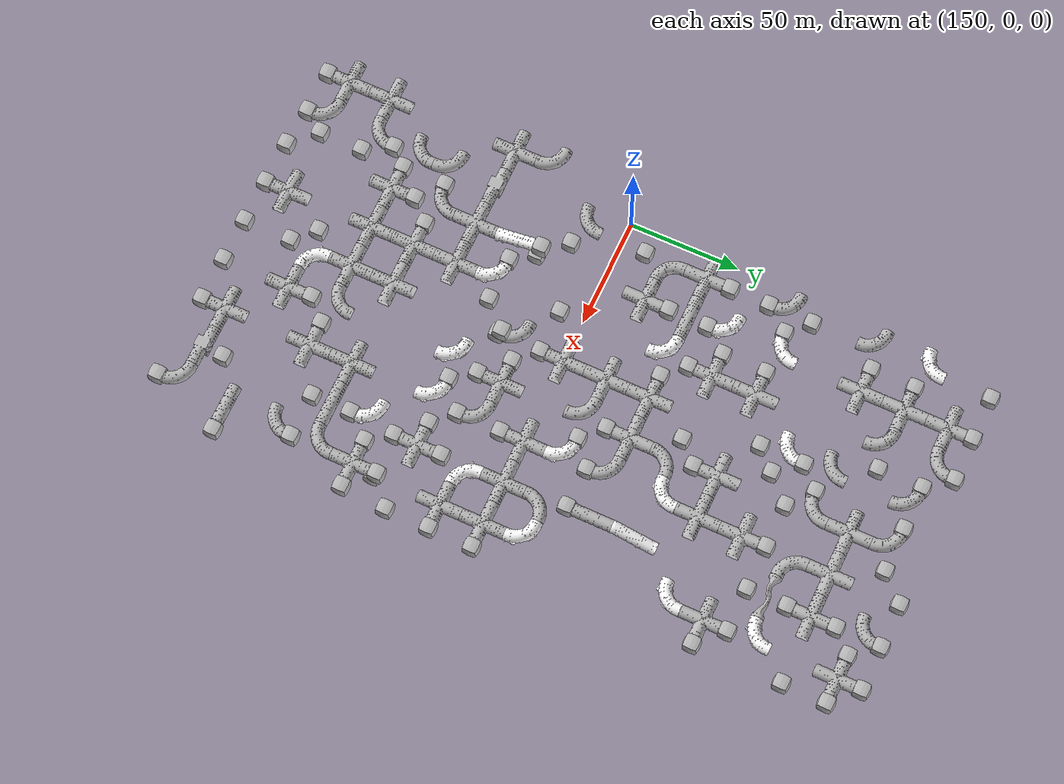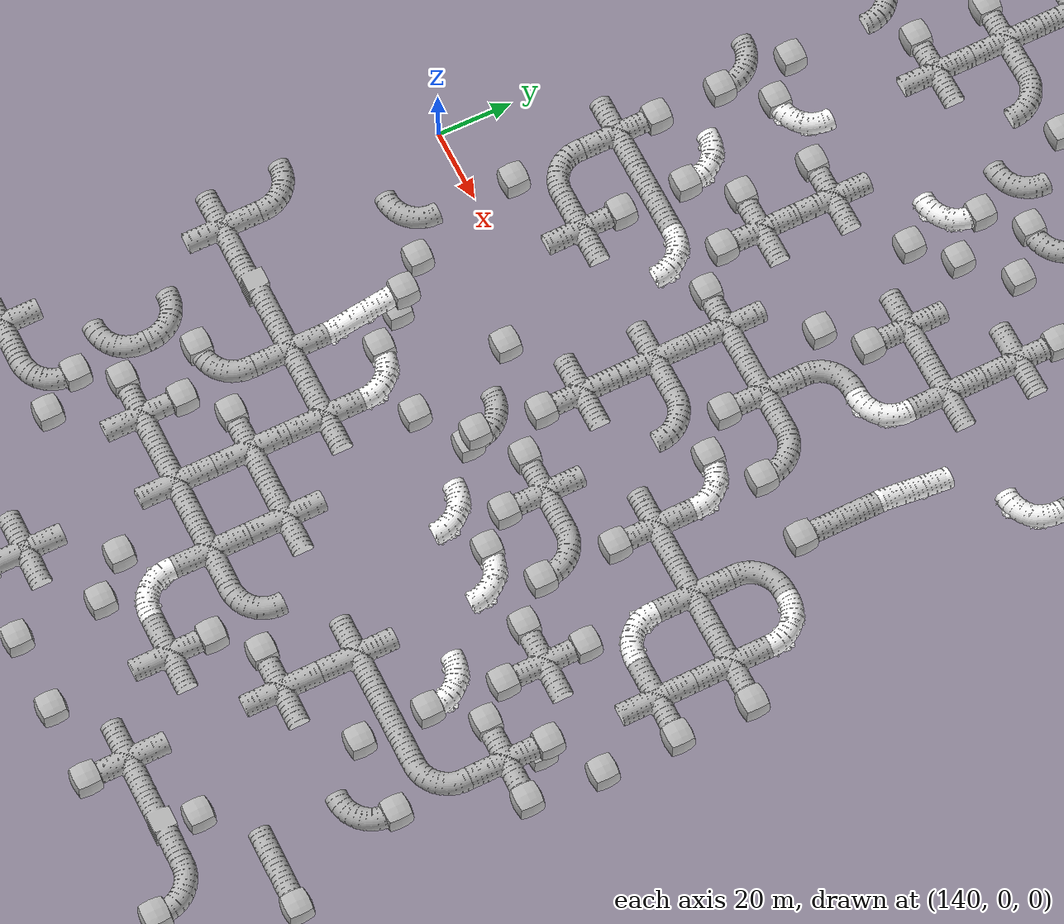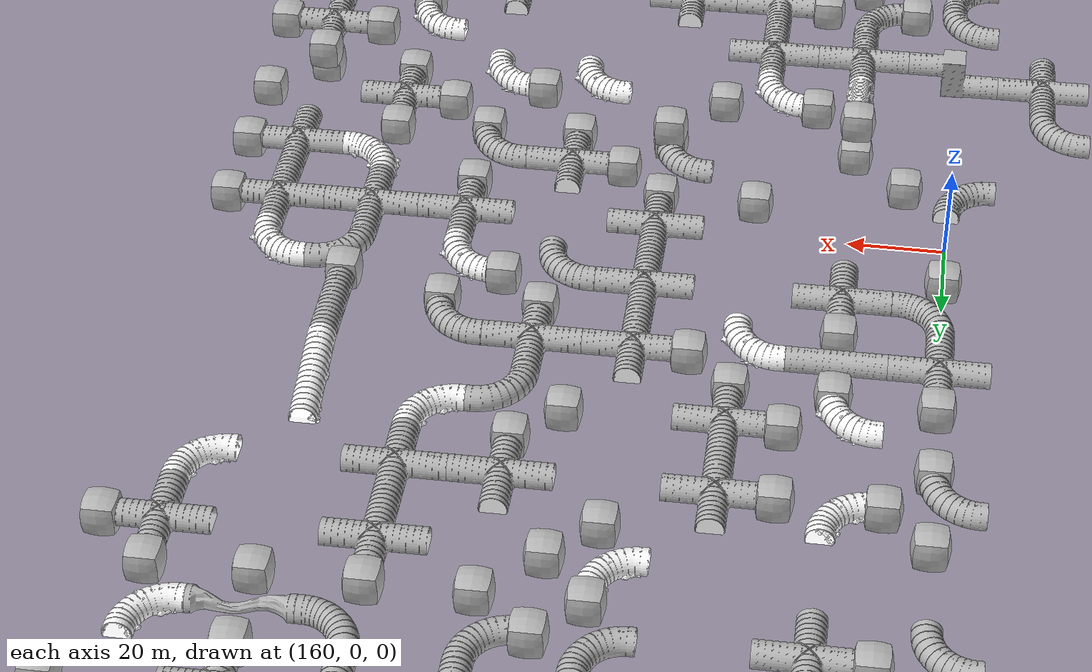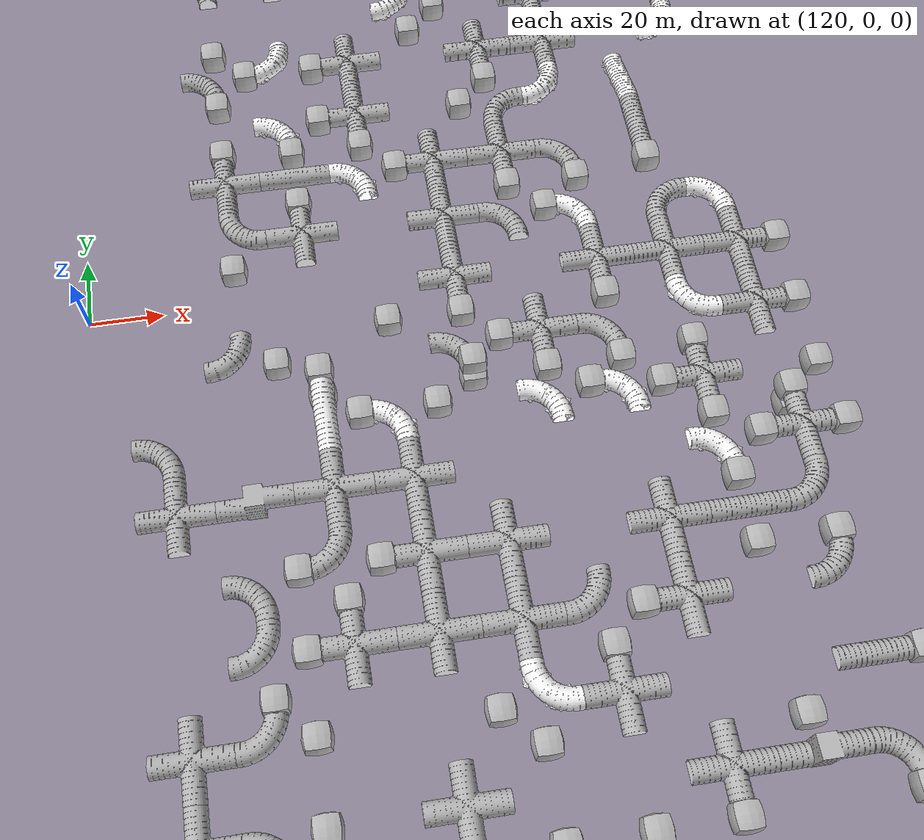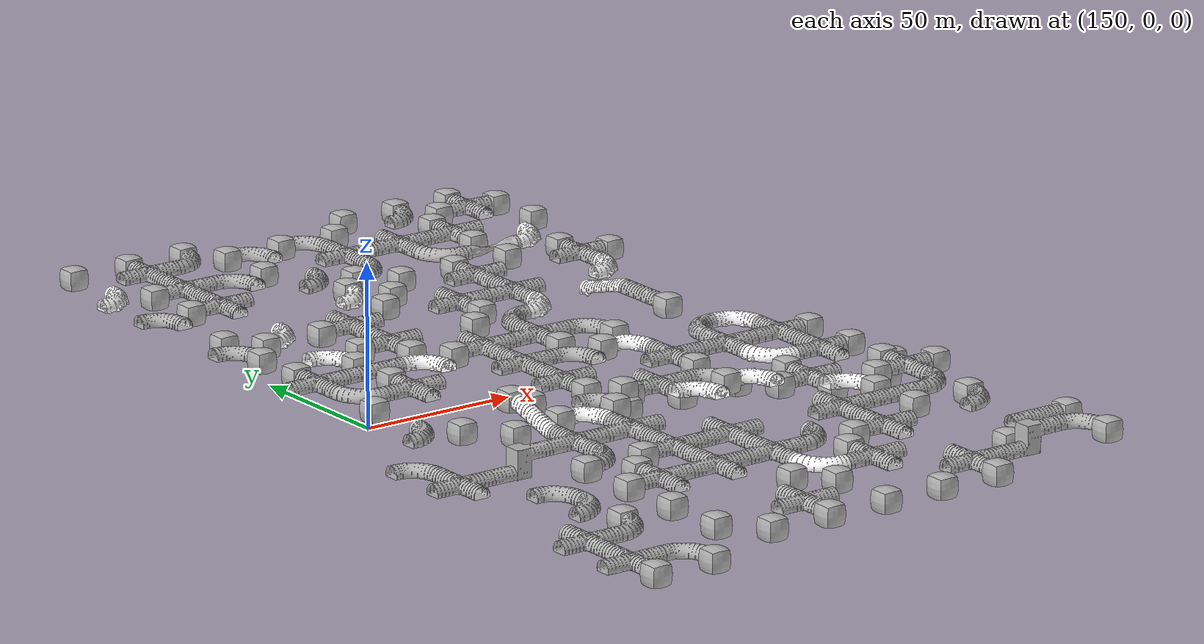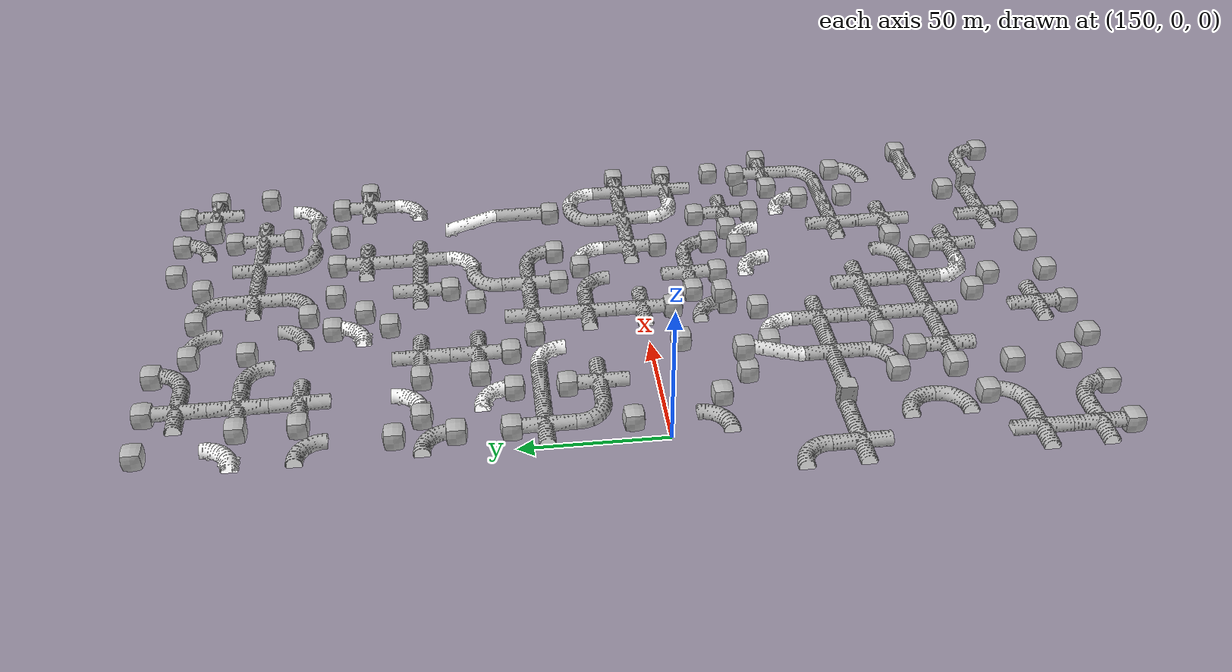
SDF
<sdf version="1.6">
 <world name="tunnel_circuit_practice_01">
  <include>
   <name>tile_22</name>
   <uri>model://tunnel_tile_blocker</uri>
   <pose>160.000000 171.000000 0.000000 0 0 0.000000</pose>
  </include>
  <include>
   <name>tile_23</name>
   <uri>model://tunnel_tile_1</uri>
   <pose>180.000000 160.000000 0.000000 0 0 0.000000</pose>
  </include>
  <include>
   <name>tile_24</name>
   <uri>model://tunnel_tile_blocker</uri>
   <pose>180.000000 171.000000 0.000000 0 0 0.000000</pose>
  </include>
  <include>
   <name>tile_25</name>
   <uri>model://tunnel_tile_2</uri>
   <pose>200.000000 160.000000 0.000000 0 0 3.141593</pose>
  </include>
  <include>
   <name>tile_26</name>
   <uri>model://tunnel_tile_blocker</uri>
   <pose>200.000000 171.000000 0.000000 0 0 0.000000</pose>
  </include>
  <include>
   <name>tile_27</name>
   <uri>model://tunnel_tile_2</uri>
   <pose>220.000000 160.000000 0.000000 0 0 4.712389</pose>
  </include>
  <include>
   <name>tile_28</name>
   <uri>model://tunnel_tile_blocker</uri>
   <pose>209.000000 160.000000 0.000000 0 0 0.000000</pose>
  </include>
  <include>
   <name>tile_29</name>
   <uri>model://tunnel_tile_2</uri>
   <pose>240.000000 160.000000 0.000000 0 0 4.712389</pose>
  </include>
  <include>
   <name>tile_30</name>
   <uri>model://tunnel_tile_blocker</uri>
   <pose>229.000000 160.000000 0.000000 0 0 0.000000</pose>
  </include>
  <include>
   <name>tile_32</name>
   <uri>model://tunnel_tile_blocker</uri>
   <pose>249.000000 160.000000 0.000000 0 0 0.000000</pose>
  </include>
  <include>
   <name>tile_33</name>
   <uri>model://tunnel_tile_blocker</uri>
   <pose>260.000000 171.000000 0.000000 0 0 0.000000</pose>
  </include>
  <include>
   <name>tile_34</name>
   <uri>model://tunnel_tile_2</uri>
   <pose>280.000000 160.000000 0.000000 0 0 3.141593</pose>
  </include>
  <include>
   <name>tile_35</name>
   <uri>model://tunnel_tile_blocker</uri>
   <pose>280.000000 171.000000 0.000000 0 0 0.000000</pose>
  </include>
  <include>
   <name>tile_36</name>
   <uri>model://tunnel_tile_1</uri>
   <pose>300.000000 160.000000 0.000000 0 0 0.000000</pose>
  </include>
  <include>
   <name>tile_37</name>
   <uri>model://tunnel_tile_blocker</uri>
   <pose>289.000000 160.000000 0.000000 0 0 0.000000</pose>
  </include>
  <include>
   <name>tile_38</name>
   <uri>model://tunnel_tile_blocker</uri>
   <pose>311.000000 160.000000 0.000000 0 0 0.000000</pose>
  </include>
  <include>
   <name>tile_39</name>
   <uri>model://tunnel_tile_blocker</uri>
   <pose>300.000000 171.000000 0.000000 0 0 0.000000</pose>
  </include>
  <include>
   <name>tile_51</name>
   <uri>model://Rough Tunnel Tile 90-degree Turn</uri>
   <pose>160.000000 140.000000 0.000000 0 0 3.141593</pose>
  </include>
  <include>
   <name>tile_52</name>
   <uri>model://tunnel_tile_1</uri>
   <pose>180.000000 140.000000 0.000000 0 0 0.000000</pose>
  </include>
  <include>
   <name>tile_53</name>
   <uri>model://tunnel_tile_blocker</uri>
   <pose>169.000000 140.000000 0.000000 0 0 0.000000</pose>
  </include>
  <include>
   <name>tile_54</name>
   <uri>model://tunnel_tile_2</uri>
   <pose>200.000000 140.000000 0.000000 0 0 4.712389</pose>
  </include>
  <include>
   <name>tile_56</name>
   <uri>model://tunnel_tile_blocker</uri>
   <pose>209.000000 140.000000 0.000000 0 0 0.000000</pose>
  </include>
  <include>
   <name>tile_57</name>
   <uri>model://tunnel_tile_1</uri>
   <pose>240.000000 140.000000 0.000000 0 0 0.000000</pose>
  </include>
  <include>
   <name>tile_58</name>
   <uri>model://tunnel_tile_1</uri>
   <pose>260.000000 140.000000 0.000000 0 0 0.000000</pose>
  </include>
  <include>
   <name>tile_59</name>
   <uri>model://tunnel_tile_1</uri>
   <pose>280.000000 140.000000 0.000000 0 0 0.000000</pose>
  </include>
  <include>
   <name>tile_60</name>
   <uri>model://tunnel_tile_blocker</uri>
   <pose>280.000000 151.000000 0.000000 0 0 0.000000</pose>
  </include>
  <include>
   <name>tile_61</name>
   <uri>model://tunnel_tile_blocker</uri>
   <pose>280.000000 129.000000 0.000000 0 0 0.000000</pose>
  </include>
  <include>
   <name>extinguisher_2</name>
   <uri>model://Extinguisher</uri>
   <pose>282.100000 137.900000 0.004000 0 0 1.570796</pose>
  </include>
  <include>
   <name>tile_63</name>
   <uri>model://tunnel_tile_blocker</uri>
   <pose>311.000000 140.000000 0.000000 0 0 0.000000</pose>
  </include>
  <include>
   <name>tile_78</name>
   <uri>model://tunnel_tile_2</uri>
   <pose>160.000000 120.000000 0.000000 0 0 4.712389</pose>
  </include>
  <include>
   <name>tile_79</name>
   <uri>model://tunnel_tile_1</uri>
   <pose>180.000000 120.000000 0.000000 0 0 0.000000</pose>
  </include>
  <include>
   <name>tile_80</name>
   <uri>model://tunnel_tile_blocker</uri>
   <pose>169.000000 120.000000 0.000000 0 0 0.000000</pose>
  </include>
  <include>
   <name>tile_82</name>
   <uri>model://tunnel_tile_2</uri>
   <pose>220.000000 120.000000 0.000000 0 0 3.141593</pose>
  </include>
  <include>
   <name>tile_83</name>
   <uri>model://tunnel_tile_2</uri>
   <pose>240.000000 120.000000 0.000000 0 0 3.141593</pose>
  </include>
  <include>
   <name>tile_84</name>
   <uri>model://tunnel_tile_blocker</uri>
   <pose>229.000000 120.000000 0.000000 0 0 0.000000</pose>
  </include>
  <include>
   <name>tile_85</name>
   <uri>model://tunnel_tile_2</uri>
   <pose>260.000000 120.000000 0.000000 0 0 1.570796</pose>
  </include>
  <include>
   <name>tile_86</name>
   <uri>model://constrained_tunnel_tile_short</uri>
   <pose>280.000000 120.000000 0.000000 0 0 1.570796</pose>
  </include>
  <include>
   <name>tile_87</name>
   <uri>model://Rough Tunnel Tile 90-degree Turn</uri>
   <pose>300.000000 120.000000 0.000000 0 0 3.141593</pose>
  </include>
  <include>
   <name>tile_101</name>
   <uri>model://tunnel_tile_blocker</uri>
   <pose>160.000000 89.000000 0.000000 0 0 0.000000</pose>
  </include>
  <include>
   <name>tile_104</name>
   <uri>model://Rough Tunnel Tile 90-degree Turn</uri>
   <pose>220.000000 100.000000 0.000000 0 0 3.141593</pose>
  </include>
  <include>
   <name>tile_105</name>
   <uri>model://tunnel_tile_blocker</uri>
   <pose>220.000000 111.000000 0.000000 0 0 0.000000</pose>
  </include>
  <include>
   <name>tile_107</name>
   <uri>model://tunnel_tile_blocker</uri>
   <pose>229.000000 100.000000 0.000000 0 0 0.000000</pose>
  </include>
  <include>
   <name>tile_108</name>
   <uri>model://tunnel_tile_blocker</uri>
   <pose>240.000000 111.000000 0.000000 0 0 0.000000</pose>
  </include>
  <include>
   <name>tile_109</name>
   <uri>model://tunnel_tile_1</uri>
   <pose>260.000000 100.000000 0.000000 0 0 0.000000</pose>
  </include>
  <include>
   <name>tile_110</name>
   <uri>model://tunnel_tile_blocker</uri>
   <pose>260.000000 111.000000 0.000000 0 0 0.000000</pose>
  </include>
  <include>
   <name>tile_112</name>
   <uri>model://tunnel_tile_blocker</uri>
   <pose>280.000000 111.000000 0.000000 0 0 0.000000</pose>
  </include>
  <include>
   <name>tile_113</name>
   <uri>model://tunnel_tile_1</uri>
   <pose>300.000000 100.000000 0.000000 0 0 0.000000</pose>
  </include>
  <include>
   <name>tile_114</name>
   <uri>model://tunnel_tile_blocker</uri>
   <pose>300.000000 111.000000 0.000000 0 0 0.000000</pose>
  </include>
  <include>
   <name>tile_115</name>
   <uri>model://tunnel_tile_blocker</uri>
   <pose>311.000000 100.000000 0.000000 0 0 0.000000</pose>
  </include>
  <include>
   <name>tile_127</name>
   <uri>model://tunnel_tile_2</uri>
   <pose>160.000000 80.000000 0.000000 0 0 4.712389</pose>
  </include>
  <include>
   <name>tile_128</name>
   <uri>model://tunnel_tile_blocker</uri>
   <pose>160.000000 69.000000 0.000000 0 0 0.000000</pose>
  </include>
  <include>
   <name>tile_129</name>
   <uri>model://Rough Tunnel Tile 90-degree Turn</uri>
   <pose>180.000000 80.000000 0.000000 0 0 3.141593</pose>
  </include>
  <include>
   <name>tile_130</name>
   <uri>model://tunnel_tile_blocker</uri>
   <pose>169.000000 80.000000 0.000000 0 0 0.000000</pose>
  </include>
  <include>
   <name>tile_131</name>
   <uri>model://tunnel_tile_1</uri>
   <pose>200.000000 80.000000 0.000000 0 0 0.000000</pose>
  </include>
  <include>
   <name>tile_132</name>
   <uri>model://tunnel_tile_blocker</uri>
   <pose>189.000000 80.000000 0.000000 0 0 0.000000</pose>
  </include>
  <include>
   <name>tile_134</name>
   <uri>model://tunnel_tile_blocker</uri>
   <pose>220.000000 91.000000 0.000000 0 0 0.000000</pose>
  </include>
  <include>
   <name>tile_135</name>
   <uri>model://tunnel_tile_1</uri>
   <pose>240.000000 80.000000 0.000000 0 0 0.000000</pose>
  </include>
  <include>
   <name>tile_136</name>
   <uri>model://tunnel_tile_blocker</uri>
   <pose>240.000000 69.000000 0.000000 0 0 0.000000</pose>
  </include>
  <include>
   <name>tile_137</name>
   <uri>model://tunnel_tile_1</uri>
   <pose>260.000000 80.000000 0.000000 0 0 0.000000</pose>
  </include>
  <include>
   <name>tile_139</name>
   <uri>model://Rough Tunnel Tile 90-degree Turn</uri>
   <pose>300.000000 80.000000 0.000000 0 0 3.141593</pose>
  </include>
  <include>
   <name>tile_151</name>
   <uri>model://Rough Tunnel Tile 90-degree Turn</uri>
   <pose>180.000000 60.000000 0.000000 0 0 4.712389</pose>
  </include>
  <include>
   <name>tile_152</name>
   <uri>model://tunnel_tile_blocker</uri>
   <pose>180.000000 49.000000 0.000000 0 0 0.000000</pose>
  </include>
  <include>
   <name>tile_153</name>
   <uri>model://tunnel_tile_1</uri>
   <pose>200.000000 60.000000 0.000000 0 0 0.000000</pose>
  </include>
  <include>
   <name>tile_154</name>
   <uri>model://tunnel_tile_blocker</uri>
   <pose>189.000000 60.000000 0.000000 0 0 0.000000</pose>
  </include>
  <include>
   <name>tile_155</name>
   <uri>model://tunnel_tile_blocker</uri>
   <pose>200.000000 49.000000 0.000000 0 0 0.000000</pose>
  </include>
  <include>
   <name>tile_157</name>
   <uri>model://tunnel_tile_blocker</uri>
   <pose>231.000000 60.000000 0.000000 0 0 0.000000</pose>
  </include>
  <include>
   <name>tile_158</name>
   <uri>model://tunnel_tile_2</uri>
   <pose>240.000000 60.000000 0.000000 0 0 0.000000</pose>
  </include>
  <include>
   <name>tile_159</name>
   <uri>model://Rough Tunnel Tile 90-degree Turn</uri>
   <pose>260.000000 60.000000 0.000000 0 0 3.141593</pose>
  </include>
  <include>
   <name>tile_160</name>
   <uri>model://Rough Tunnel Tile Ramp</uri>
   <pose>280.000000 60.000000 0.000000 0 0 3.141593</pose>
  </include>
  <include>
   <name>tile_177</name>
   <uri>model://tunnel_tile_1</uri>
   <pose>160.000000 40.000000 0.000000 0 0 0.000000</pose>
  </include>
  <include>
   <name>tile_178</name>
   <uri>model://tunnel_tile_blocker</uri>
   <pose>160.000000 51.000000 0.000000 0 0 0.000000</pose>
  </include>
  <include>
   <name>tile_179</name>
   <uri>model://tunnel_tile_5</uri>
   <pose>180.000000 40.000000 0.000000 0 0 1.570796</pose>
  </include>
  <include>
   <name>tile_180</name>
   <uri>model://Rough Tunnel Tile 90-degree Turn</uri>
   <pose>200.000000 40.000000 0.000000 0 0 4.712389</pose>
  </include>
  <include>
   <name>tile_181</name>
   <uri>model://tunnel_tile_1</uri>
   <pose>220.000000 40.000000 0.000000 0 0 0.000000</pose>
  </include>
  <include>
   <name>tile_182</name>
   <uri>model://tunnel_tile_blocker</uri>
   <pose>209.000000 40.000000 0.000000 0 0 0.000000</pose>
  </include>
  <include>
   <name>tile_183</name>
   <uri>model://tunnel_tile_1</uri>
   <pose>240.000000 40.000000 0.000000 0 0 0.000000</pose>
  </include>
  <include>
   <name>tile_184</name>
   <uri>model://tunnel_tile_blocker</uri>
   <pose>240.000000 29.000000 0.000000 0 0 0.000000</pose>
  </include>
  <include>
   <name>tile_185</name>
   <uri>model://tunnel_tile_2</uri>
   <pose>260.000000 40.000000 0.000000 0 0 4.712389</pose>
  </include>
  <include>
   <name>tile_186</name>
   <uri>model://tunnel_tile_blocker</uri>
   <pose>260.000000 29.000000 0.000000 0 0 0.000000</pose>
  </include>
  <include>
   <name>tile_187</name>
   <uri>model://tunnel_tile_5</uri>
   <pose>280.000000 40.000000 5.000000 0 0 0.000000</pose>
  </include>
  <include>
   <name>tile_188</name>
   <uri>model://tunnel_tile_blocker</uri>
   <pose>280.000000 29.000000 5.000000 0 0 0.000000</pose>
  </include>
  <include>
   <name>phone_2</name>
   <uri>model://Phone</uri>
   <pose>277.900000 43.000000 5.004000 -1.570796 0 0.000000</pose>
  </include>
  <include>
   <name>tile_201</name>
   <uri>model://tunnel_tile_2</uri>
   <pose>160.000000 20.000000 0.000000 0 0 1.570796</pose>
  </include>
  <include>
   <name>tile_202</name>
   <uri>model://tunnel_tile_1</uri>
   <pose>180.000000 20.000000 0.000000 0 0 0.000000</pose>
  </include>
  <include>
   <name>tile_203</name>
   <uri>model://tunnel_tile_blocker</uri>
   <pose>180.000000 31.000000 0.000000 0 0 0.000000</pose>
  </include>
  <include>
   <name>tile_205</name>
   <uri>model://tunnel_tile_1</uri>
   <pose>220.000000 20.000000 0.000000 0 0 0.000000</pose>
  </include>
  <include>
   <name>tile_206</name>
   <uri>model://tunnel_tile_2</uri>
   <pose>240.000000 20.000000 0.000000 0 0 4.712389</pose>
  </include>
  <include>
   <name>tile_207</name>
   <uri>model://Rough Tunnel Tile 90-degree Turn</uri>
   <pose>260.000000 20.000000 0.000000 0 0 4.712389</pose>
  </include>
  <include>
   <name>tile_208</name>
   <uri>model://tunnel_tile_blocker</uri>
   <pose>249.000000 20.000000 0.000000 0 0 0.000000</pose>
  </include>
  <include>
   <name>tile_209</name>
   <uri>model://tunnel_tile_2</uri>
   <pose>280.000000 20.000000 0.000000 0 0 0.000000</pose>
  </include>
  <include>
   <name>tile_210</name>
   <uri>model://Rough Tunnel Tile 90-degree Turn</uri>
   <pose>300.000000 20.000000 0.000000 0 0 4.712389</pose>
  </include>
  <include>
   <name>tile_221</name>
   <uri>model://tunnel_tile_blocker</uri>
   <pose>160.000000 11.000000 0.000000 0 0 0.000000</pose>
  </include>
  <include>
   <name>tile_224</name>
   <uri>model://tunnel_tile_blocker</uri>
   <pose>200.000000 -11.000000 0.000000 0 0 0.000000</pose>
  </include>
  <include>
   <name>tile_225</name>
   <uri>model://tunnel_tile_1</uri>
   <pose>220.000000 0.000000 0.000000 0 0 0.000000</pose>
  </include>
  <include>
   <name>tile_226</name>
   <uri>model://tunnel_tile_blocker</uri>
   <pose>220.000000 -11.000000 0.000000 0 0 0.000000</pose>
  </include>
  <include>
   <name>tile_228</name>
   <uri>model://tunnel_tile_1</uri>
   <pose>260.000000 0.000000 0.000000 0 0 0.000000</pose>
  </include>
  <include>
   <name>tile_229</name>
   <uri>model://tunnel_tile_blocker</uri>
   <pose>260.000000 -11.000000 0.000000 0 0 0.000000</pose>
  </include>
  <include>
   <name>tile_230</name>
   <uri>model://tunnel_tile_1</uri>
   <pose>280.000000 0.000000 0.000000 0 0 0.000000</pose>
  </include>
  <include>
   <name>tile_231</name>
   <uri>model://tunnel_tile_1</uri>
   <pose>300.000000 0.000000 0.000000 0 0 0.000000</pose>
  </include>
  <include>
   <name>tile_232</name>
   <uri>model://tunnel_tile_blocker</uri>
   <pose>311.000000 0.000000 0.000000 0 0 0.000000</pose>
  </include>
  <include>
   <name>tile_247</name>
   <uri>model://tunnel_tile_2</uri>
   <pose>160.000000 -20.000000 0.000000 0 0 3.141593</pose>
  </include>
  <include>
   <name>tile_249</name>
   <uri>model://tunnel_tile_blocker</uri>
   <pose>169.000000 -20.000000 0.000000 0 0 0.000000</pose>
  </include>
  <include>
   <name>tile_250</name>
   <uri>model://tunnel_tile_blocker</uri>
   <pose>180.000000 -31.000000 0.000000 0 0 0.000000</pose>
  </include>
  <include>
   <name>tile_252</name>
   <uri>model://tunnel_tile_2</uri>
   <pose>220.000000 -20.000000 0.000000 0 0 4.712389</pose>
  </include>
  <include>
   <name>tile_253</name>
   <uri>model://tunnel_tile_blocker</uri>
   <pose>220.000000 -31.000000 0.000000 0 0 0.000000</pose>
  </include>
  <include>
   <name>tile_254</name>
   <uri>model://tunnel_tile_1</uri>
   <pose>240.000000 -20.000000 0.000000 0 0 0.000000</pose>
  </include>
  <include>
   <name>tile_255</name>
   <uri>model://tunnel_tile_blocker</uri>
   <pose>229.000000 -20.000000 0.000000 0 0 0.000000</pose>
  </include>
  <include>
   <name>tile_256</name>
   <uri>model://tunnel_tile_blocker</uri>
   <pose>240.000000 -31.000000 0.000000 0 0 0.000000</pose>
  </include>
  <include>
   <name>tile_257</name>
   <uri>model://tunnel_tile_2</uri>
   <pose>260.000000 -20.000000 0.000000 0 0 4.712389</pose>
  </include>
  <include>
   <name>tile_258</name>
   <uri>model://tunnel_tile_blocker</uri>
   <pose>260.000000 -31.000000 0.000000 0 0 0.000000</pose>
  </include>
  <include>
   <name>tile_259</name>
   <uri>model://Rough Tunnel Tile 90-degree Turn</uri>
   <pose>280.000000 -20.000000 0.000000 0 0 1.570796</pose>
  </include>
  <include>
   <name>tile_260</name>
   <uri>model://tunnel_tile_1</uri>
   <pose>300.000000 -20.000000 0.000000 0 0 0.000000</pose>
  </include>
  <include>
   <name>tile_261</name>
   <uri>model://tunnel_tile_blocker</uri>
   <pose>311.000000 -20.000000 0.000000 0 0 0.000000</pose>
  </include>
  <include>
   <name>tile_275</name>
   <uri>model://tunnel_tile_2</uri>
   <pose>140.000000 -40.000000 0.000000 0 0 4.712389</pose>
  </include>
  <include>
   <name>tile_276</name>
   <uri>model://Rough Tunnel Tile Ramp</uri>
   <pose>180.000000 -40.000000 5.000000 0 0 0.000000</pose>
  </include>
  <include>
   <name>tile_277</name>
   <uri>model://tunnel_tile_blocker</uri>
   <pose>180.000000 -29.000000 10.000000 0 0 0.000000</pose>
  </include>
  <include>
   <name>tile_278</name>
   <uri>model://Rough Tunnel Tile 90-degree Turn</uri>
   <pose>200.000000 -40.000000 5.000000 0 0 4.712389</pose>
  </include>
  <include>
   <name>tile_279</name>
   <uri>model://tunnel_tile_blocker</uri>
   <pose>189.000000 -40.000000 5.000000 0 0 0.000000</pose>
  </include>
  <include>
   <name>tile_281</name>
   <uri>model://tunnel_tile_blocker</uri>
   <pose>209.000000 -40.000000 5.000000 0 0 0.000000</pose>
  </include>
  <include>
   <name>tile_282</name>
   <uri>model://tunnel_tile_blocker</uri>
   <pose>220.000000 -29.000000 5.000000 0 0 0.000000</pose>
  </include>
  <include>
   <name>tile_283</name>
   <uri>model://Rough Tunnel Tile 90-degree Turn</uri>
   <pose>240.000000 -40.000000 5.000000 0 0 4.712389</pose>
  </include>
  <include>
   <name>tile_284</name>
   <uri>model://Rough Tunnel Tile 90-degree Turn</uri>
   <pose>260.000000 -40.000000 5.000000 0 0 4.712389</pose>
  </include>
  <include>
   <name>tile_285</name>
   <uri>model://tunnel_tile_blocker</uri>
   <pose>249.000000 -40.000000 5.000000 0 0 0.000000</pose>
  </include>
  <include>
   <name>tile_286</name>
   <uri>model://tunnel_tile_1</uri>
   <pose>280.000000 -40.000000 0.000000 0 0 0.000000</pose>
  </include>
  <include>
   <name>tile_287</name>
   <uri>model://tunnel_tile_blocker</uri>
   <pose>280.000000 -51.000000 0.000000 0 0 0.000000</pose>
  </include>
  <include>
   <name>tile_288</name>
   <uri>model://tunnel_tile_blocker</uri>
   <pose>280.000000 -29.000000 0.000000 0 0 0.000000</pose>
  </include>
  <include>
   <name>tile_289</name>
   <uri>model://tunnel_tile_blocker</uri>
   <pose>269.000000 -40.000000 0.000000 0 0 0.000000</pose>
  </include>
  <include>
   <name>tile_291</name>
   <uri>model://tunnel_tile_blocker</uri>
   <pose>311.000000 -40.000000 0.000000 0 0 0.000000</pose>
  </include>
  <include>
   <name>tile_292</name>
   <uri>model://tunnel_tile_blocker</uri>
   <pose>300.000000 -51.000000 0.000000 0 0 0.000000</pose>
  </include>
  <include>
   <name>tile_304</name>
   <uri>model://tunnel_tile_1</uri>
   <pose>140.000000 -60.000000 0.000000 0 0 0.000000</pose>
  </include>
  <include>
   <name>tile_305</name>
   <uri>model://tunnel_tile_7</uri>
   <pose>160.000000 -60.000000 0.000000 0 0 4.712389</pose>
  </include>
  <include>
   <name>tile_306</name>
   <uri>model://tunnel_tile_1</uri>
   <pose>180.000000 -60.000000 5.000000 0 0 0.000000</pose>
  </include>
  <include>
   <name>tile_307</name>
   <uri>model://tunnel_tile_1</uri>
   <pose>200.000000 -60.000000 5.000000 0 0 0.000000</pose>
  </include>
  <include>
   <name>tile_311</name>
   <uri>model://Rough Tunnel Tile 90-degree Turn</uri>
   <pose>280.000000 -60.000000 5.000000 0 0 4.712389</pose>
  </include>
  <include>
   <name>tile_312</name>
   <uri>model://tunnel_tile_blocker</uri>
   <pose>280.000000 -71.000000 5.000000 0 0 0.000000</pose>
  </include>
  <include>
   <name>tile_313</name>
   <uri>model://tunnel_tile_1</uri>
   <pose>300.000000 -60.000000 5.000000 0 0 0.000000</pose>
  </include>
  <include>
   <name>tile_314</name>
   <uri>model://tunnel_tile_blocker</uri>
   <pose>289.000000 -60.000000 5.000000 0 0 0.000000</pose>
  </include>
  <include>
   <name>tile_315</name>
   <uri>model://tunnel_tile_blocker</uri>
   <pose>311.000000 -60.000000 5.000000 0 0 0.000000</pose>
  </include>
  <include>
   <name>tile_316</name>
   <uri>model://tunnel_tile_blocker</uri>
   <pose>300.000000 -49.000000 5.000000 0 0 0.000000</pose>
  </include>
  <include>
   <name>tile_329</name>
   <uri>model://tunnel_tile_2</uri>
   <pose>160.000000 -80.000000 0.000000 0 0 4.712389</pose>
  </include>
  <include>
   <name>tile_330</name>
   <uri>model://tunnel_tile_2</uri>
   <pose>180.000000 -80.000000 5.000000 0 0 3.141593</pose>
  </include>
  <include>
   <name>tile_331</name>
   <uri>model://tunnel_tile_blocker</uri>
   <pose>169.000000 -80.000000 5.000000 0 0 0.000000</pose>
  </include>
  <include>
   <name>tile_332</name>
   <uri>model://tunnel_tile_1</uri>
   <pose>200.000000 -80.000000 5.000000 0 0 0.000000</pose>
  </include>
  <include>
   <name>tile_333</name>
   <uri>model://tunnel_tile_blocker</uri>
   <pose>189.000000 -80.000000 5.000000 0 0 0.000000</pose>
  </include>
  <include>
   <name>tile_334</name>
   <uri>model://tunnel_tile_1</uri>
   <pose>220.000000 -80.000000 5.000000 0 0 0.000000</pose>
  </include>
  <include>
   <name>tile_336</name>
   <uri>model://tunnel_tile_1</uri>
   <pose>260.000000 -80.000000 5.000000 0 0 0.000000</pose>
  </include>
  <include>
   <name>tile_337</name>
   <uri>model://tunnel_tile_5</uri>
   <pose>280.000000 -80.000000 5.000000 0 0 1.570796</pose>
  </include>
  <include>
   <name>tile_338</name>
   <uri>model://tunnel_tile_2</uri>
   <pose>300.000000 -80.000000 5.000000 0 0 3.141593</pose>
  </include>
  <include>
   <name>tile_356</name>
   <uri>model://tunnel_tile_2</uri>
   <pose>160.000000 -100.000000 0.000000 0 0 3.141593</pose>
  </include>
  <include>
   <name>tile_357</name>
   <uri>model://tunnel_tile_1</uri>
   <pose>180.000000 -100.000000 5.000000 0 0 0.000000</pose>
  </include>
  <include>
   <name>tile_358</name>
   <uri>model://tunnel_tile_blocker</uri>
   <pose>180.000000 -89.000000 5.000000 0 0 0.000000</pose>
  </include>
  <include>
   <name>tile_359</name>
   <uri>model://tunnel_tile_blocker</uri>
   <pose>169.000000 -100.000000 5.000000 0 0 0.000000</pose>
  </include>
  <include>
   <name>tile_360</name>
   <uri>model://tunnel_tile_1</uri>
   <pose>200.000000 -100.000000 5.000000 0 0 0.000000</pose>
  </include>
  <include>
   <name>tile_361</name>
   <uri>model://tunnel_tile_1</uri>
   <pose>220.000000 -100.000000 5.000000 0 0 0.000000</pose>
  </include>
  <include>
   <name>tile_362</name>
   <uri>model://tunnel_tile_2</uri>
   <pose>240.000000 -100.000000 5.000000 0 0 3.141593</pose>
  </include>
  <include>
   <name>tile_363</name>
   <uri>model://tunnel_tile_1</uri>
   <pose>260.000000 -100.000000 5.000000 0 0 0.000000</pose>
  </include>
  <include>
   <name>tile_364</name>
   <uri>model://tunnel_tile_blocker</uri>
   <pose>249.000000 -100.000000 5.000000 0 0 0.000000</pose>
  </include>
  <include>
   <name>tile_366</name>
   <uri>model://tunnel_tile_blocker</uri>
   <pose>280.000000 -89.000000 5.000000 0 0 0.000000</pose>
  </include>
  <include>
   <name>tile_367</name>
   <uri>model://tunnel_tile_2</uri>
   <pose>300.000000 -100.000000 5.000000 0 0 3.141593</pose>
  </include>
  <include>
   <name>tile_368</name>
   <uri>model://tunnel_tile_blocker</uri>
   <pose>300.000000 -89.000000 5.000000 0 0 0.000000</pose>
  </include>
  <include>
   <name>tile_382</name>
   <uri>model://tunnel_tile_1</uri>
   <pose>140.000000 -120.000000 0.000000 0 0 0.000000</pose>
  </include>
  <include>
   <name>tile_384</name>
   <uri>model://tunnel_tile_2</uri>
   <pose>160.000000 -120.000000 0.000000 0 0 3.141593</pose>
  </include>
  <include>
   <name>tile_385</name>
   <uri>model://tunnel_tile_blocker</uri>
   <pose>160.000000 -109.000000 0.000000 0 0 0.000000</pose>
  </include>
  <include>
   <name>tile_387</name>
   <uri>model://tunnel_tile_blocker</uri>
   <pose>169.000000 -120.000000 5.000000 0 0 0.000000</pose>
  </include>
  <include>
   <name>tile_389</name>
   <uri>model://tunnel_tile_blocker</uri>
   <pose>211.000000 -120.000000 5.000000 0 0 0.000000</pose>
  </include>
  <include>
   <name>tile_390</name>
   <uri>model://Rough Tunnel Tile 90-degree Turn</uri>
   <pose>220.000000 -120.000000 5.000000 0 0 1.570796</pose>
  </include>
  <include>
   <name>tile_391</name>
   <uri>model://tunnel_tile_1</uri>
   <pose>240.000000 -120.000000 5.000000 0 0 0.000000</pose>
  </include>
  <include>
   <name>tile_392</name>
   <uri>model://tunnel_tile_blocker</uri>
   <pose>240.000000 -109.000000 5.000000 0 0 0.000000</pose>
  </include>
  <include>
   <name>tile_395</name>
   <uri>model://tunnel_tile_blocker</uri>
   <pose>280.000000 -131.000000 5.000000 0 0 0.000000</pose>
  </include>
  <include>
   <name>tile_396</name>
   <uri>model://tunnel_tile_5</uri>
   <pose>300.000000 -120.000000 5.000000 0 0 1.570796</pose>
  </include>
  <include>
   <name>tile_397</name>
   <uri>model://tunnel_tile_blocker</uri>
   <pose>311.000000 -120.000000 5.000000 0 0 0.000000</pose>
  </include>
  <include>
   <name>tile_418</name>
   <uri>model://tunnel_tile_1</uri>
   <pose>140.000000 -140.000000 0.000000 0 0 0.000000</pose>
  </include>
  <include>
   <name>tile_420</name>
   <uri>model://tunnel_tile_blocker</uri>
   <pose>140.000000 -151.000000 0.000000 0 0 0.000000</pose>
  </include>
  <include>
   <name>backpack_3</name>
   <uri>model://Backpack</uri>
   <pose>142.100000 -141.000000 0.004000 0 0 0.000000</pose>
  </include>
  <include>
   <name>tile_421</name>
   <uri>model://tunnel_tile_2</uri>
   <pose>160.000000 -140.000000 0.000000 0 0 4.712389</pose>
  </include>
  <include>
   <name>tile_422</name>
   <uri>model://tunnel_tile_blocker</uri>
   <pose>160.000000 -151.000000 0.000000 0 0 0.000000</pose>
  </include>
  <include>
   <name>tile_424</name>
   <uri>model://tunnel_tile_blocker</uri>
   <pose>169.000000 -140.000000 5.000000 0 0 0.000000</pose>
  </include>
  <include>
   <name>tile_425</name>
   <uri>model://tunnel_tile_blocker</uri>
   <pose>180.000000 -151.000000 5.000000 0 0 0.000000</pose>
  </include>
  <include>
   <name>tile_426</name>
   <uri>model://tunnel_tile_1</uri>
   <pose>200.000000 -140.000000 5.000000 0 0 0.000000</pose>
  </include>
  <include>
   <name>tile_427</name>
   <uri>model://tunnel_tile_blocker</uri>
   <pose>200.000000 -151.000000 5.000000 0 0 0.000000</pose>
  </include>
  <include>
   <name>tile_429</name>
   <uri>model://tunnel_tile_blocker</uri>
   <pose>220.000000 -129.000000 5.000000 0 0 0.000000</pose>
  </include>
  <include>
   <name>tile_430</name>
   <uri>model://tunnel_tile_blocker</uri>
   <pose>220.000000 -151.000000 5.000000 0 0 0.000000</pose>
  </include>
  <include>
   <name>tile_432</name>
   <uri>model://tunnel_tile_blocker</uri>
   <pose>240.000000 -151.000000 5.000000 0 0 0.000000</pose>
  </include>
  <include>
   <name>tile_433</name>
   <uri>model://tunnel_tile_1</uri>
   <pose>260.000000 -140.000000 5.000000 0 0 0.000000</pose>
  </include>
  <include>
   <name>tile_434</name>
   <uri>model://tunnel_tile_blocker</uri>
   <pose>260.000000 -151.000000 5.000000 0 0 0.000000</pose>
  </include>
  <include>
   <name>tile_435</name>
   <uri>model://tunnel_tile_7</uri>
   <pose>280.000000 -140.000000 5.000000 0 0 4.712389</pose>
  </include>
  <include>
   <name>tile_436</name>
   <uri>model://tunnel_tile_2</uri>
   <pose>300.000000 -140.000000 10.000000 0 0 4.712389</pose>
  </include>
  <include>
   <name>tile_437</name>
   <uri>model://tunnel_tile_blocker</uri>
   <pose>300.000000 -151.000000 10.000000 0 0 0.000000</pose>
  </include>
  <include>
   <name>backpack_4</name>
   <uri>model://Backpack</uri>
   <pose>298.000000 -141.300000 10.004000 0 0 0.000000</pose>
  </include>
 </world>
</sdf>
